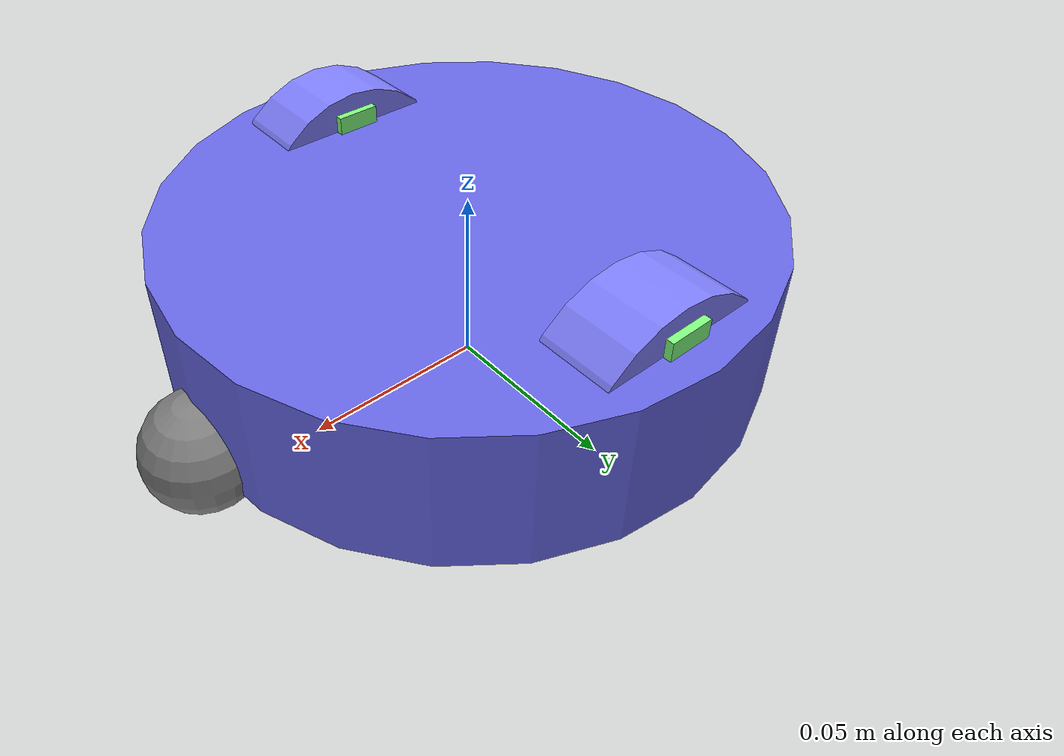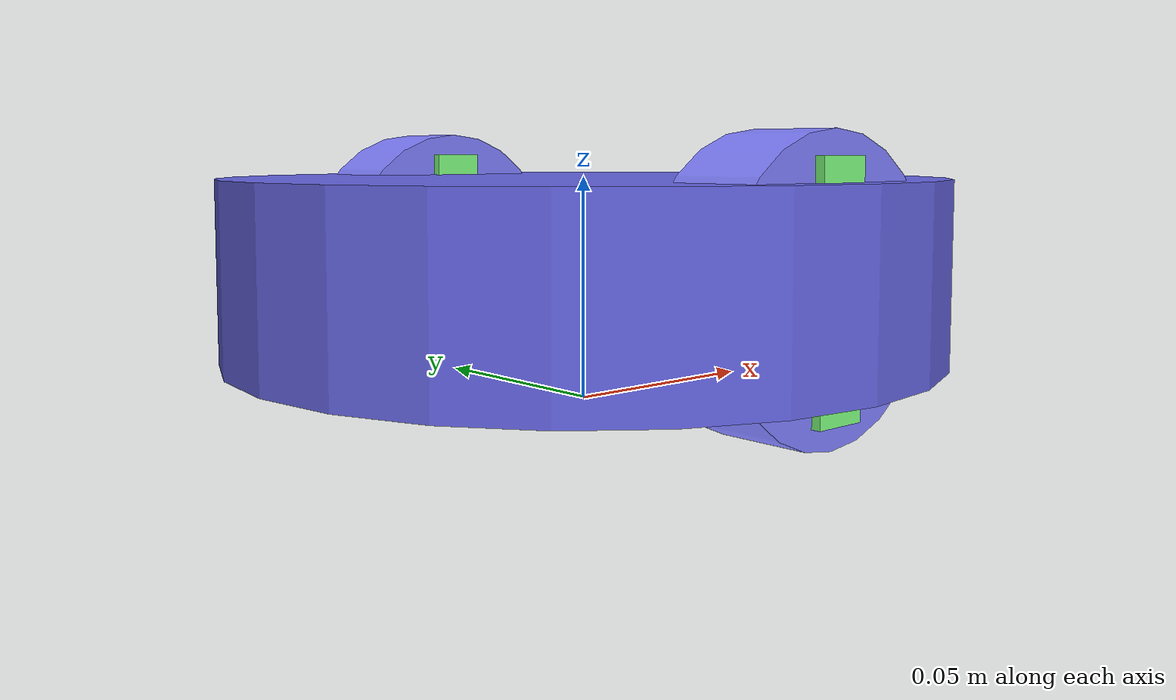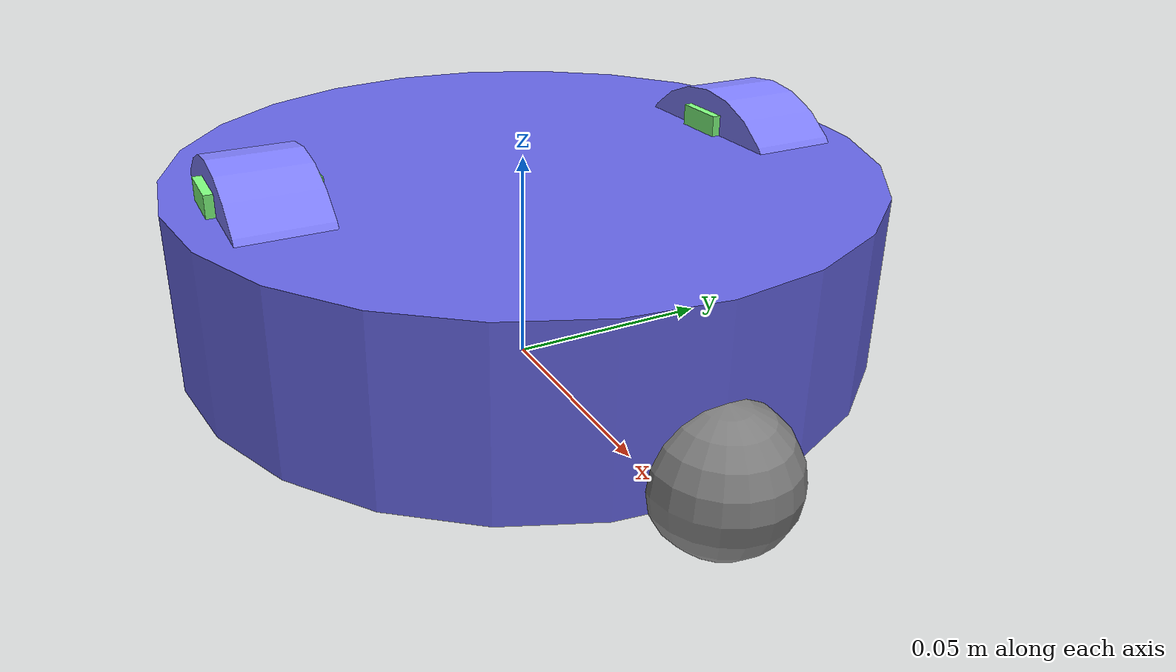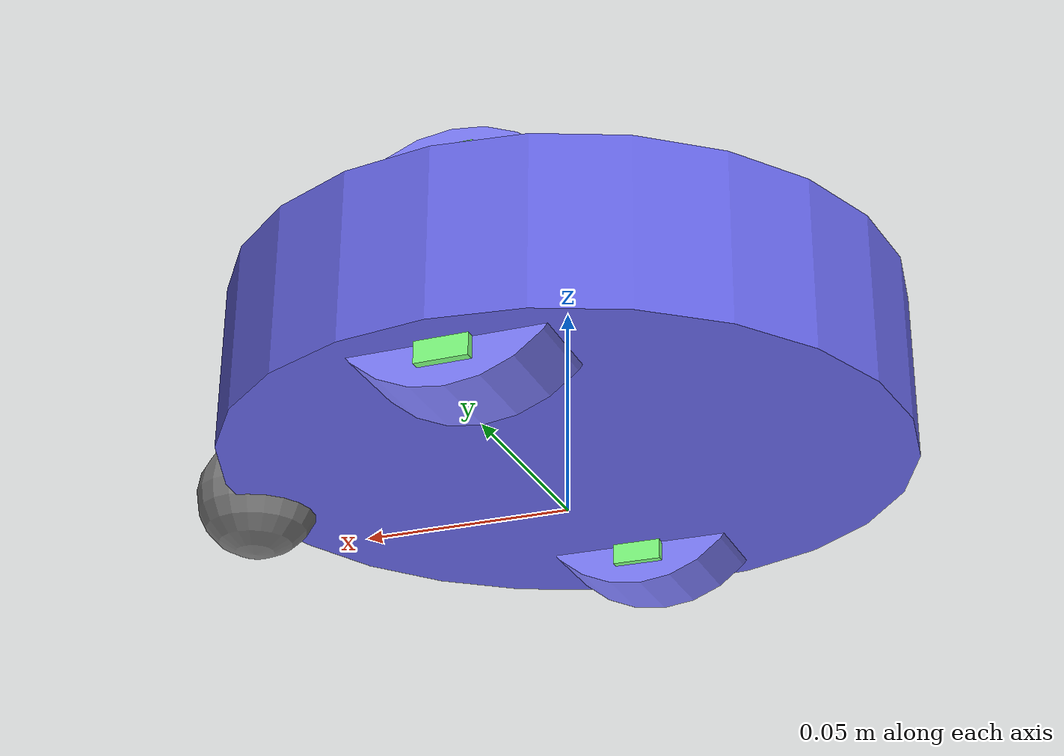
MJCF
<mujoco>
  <compiler autolimits="true" meshdir="assets" angle="radian"/>

  <option cone="elliptic" impratio="10"/>

  <asset>
    <mesh name="chasis" scale=".01 .006 .0015"
      vertex=" 9   2   0
              -10  10  10
               9  -2   0
               10  3  -10
               10 -3  -10
              -8   10 -10
              -10 -10  10
              -8  -10 -10
              -5   0   20"/>
    <material name="robot_mat" rgba="0.4 0.4 0.9 1"/>
  </asset>

  <default>
    <joint damping=".03" actuatorfrcrange="-0.5 0.5"/>
    <default class="wheel">
      <geom type="cylinder" size=".03 .01" rgba=".5 .5 1 1"/>
    </default>
    <default class="decor">
      <site type="box" rgba=".5 1 .5 1"/>
    </default>
  </default>

  <worldbody>
    <body name="car" pos="0 0 .03">
      <freejoint/>
      <inertial mass="1.0" pos="0 0 0" diaginertia="0.01 0.01 0.01"/>
      <light name="top light" pos="0 0 2" mode="trackcom" diffuse=".4 .4 .4"/>
      <geom name="cylinder" type="cylinder" size="0.08 0.02" material="robot_mat"/>
      <geom name="front wheel" pos=".08 0 -.015" type="sphere" size=".015" condim="1" priority="1"/>
      <light name="front light" pos=".1 0 .02" dir="2 0 -1" diffuse="1 1 1"/>
      <body name="left wheel" pos="-.00 .06 0" zaxis="0 1 0">
        <joint name="left"/>
        <inertial mass="0.05" pos="0 0 0" diaginertia="0.0001 0.0001 0.0001"/>
        <geom class="wheel"/>
        <site class="decor" size=".006 .025 .012"/>
        <site class="decor" size=".025 .006 .012"/>
      </body>
      <body name="right wheel" pos="-.00 -.06 0" zaxis="0 1 0">
        <joint name="right"/>
        <inertial mass="0.05" pos="0 0 0" diaginertia="0.0001 0.0001 0.0001"/>
        <geom class="wheel"/>
        <site class="decor" size=".006 .025 .012"/>
        <site class="decor" size=".025 .006 .012"/>
      </body>
    </body>
  </worldbody>

  <tendon>
    <fixed name="forward">
      <joint joint="left" coef=".5"/>
      <joint joint="right" coef=".5"/>
    </fixed>
    <fixed name="turn">
      <joint joint="left" coef="-.5"/>
      <joint joint="right" coef=".5"/>
    </fixed>
  </tendon>

  <actuator>
    <motor name="forward" tendon="forward" ctrlrange="-1 1"/>
    <motor name="turn" tendon="turn" ctrlrange="-1 1"/>
  </actuator>

  <sensor>
    <jointactuatorfrc name="right" joint="right"/>
    <jointactuatorfrc name="left" joint="left"/>
  </sensor>
</mujoco>
